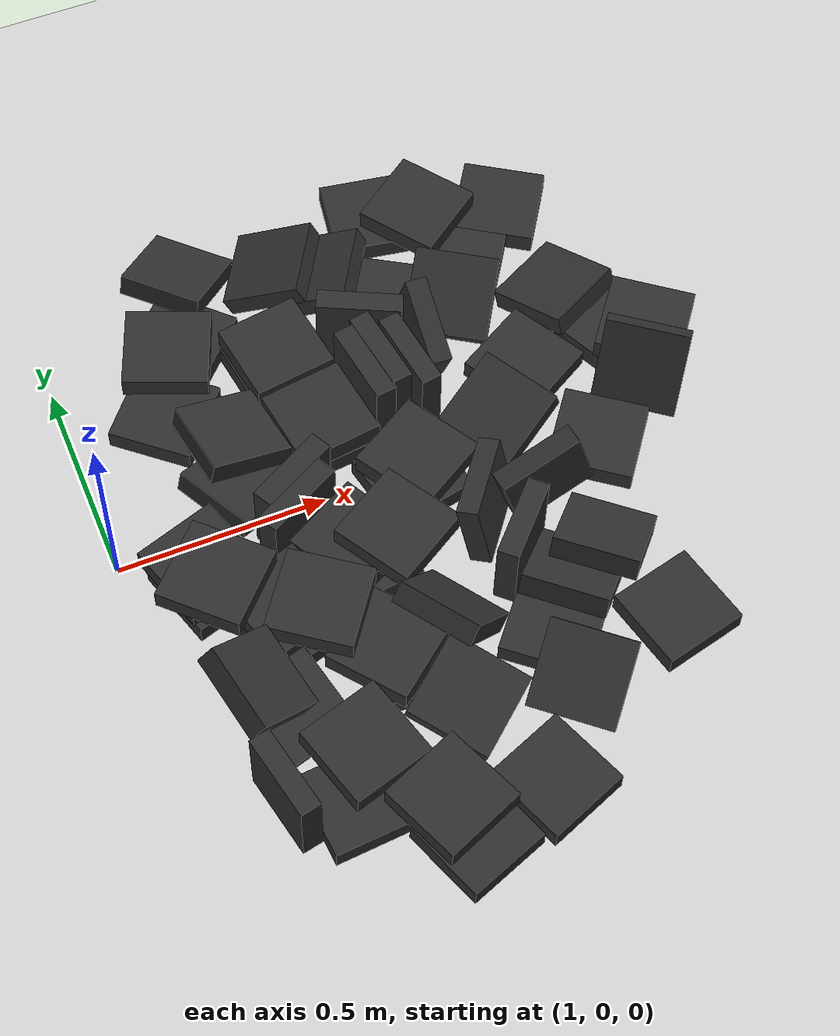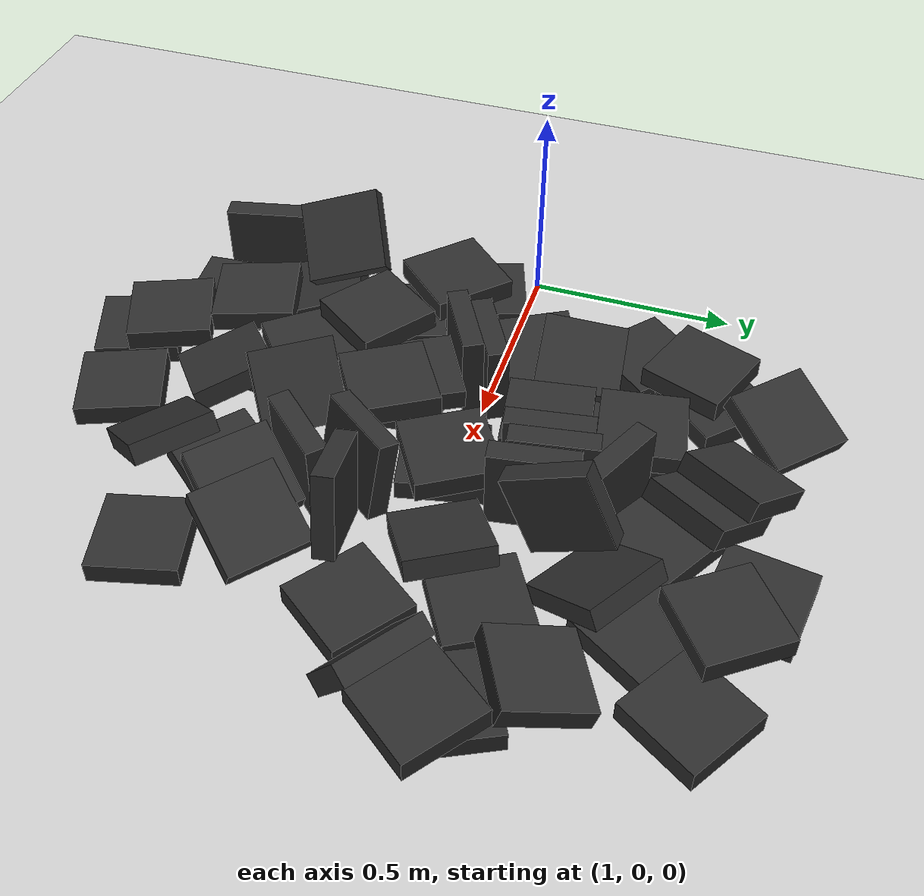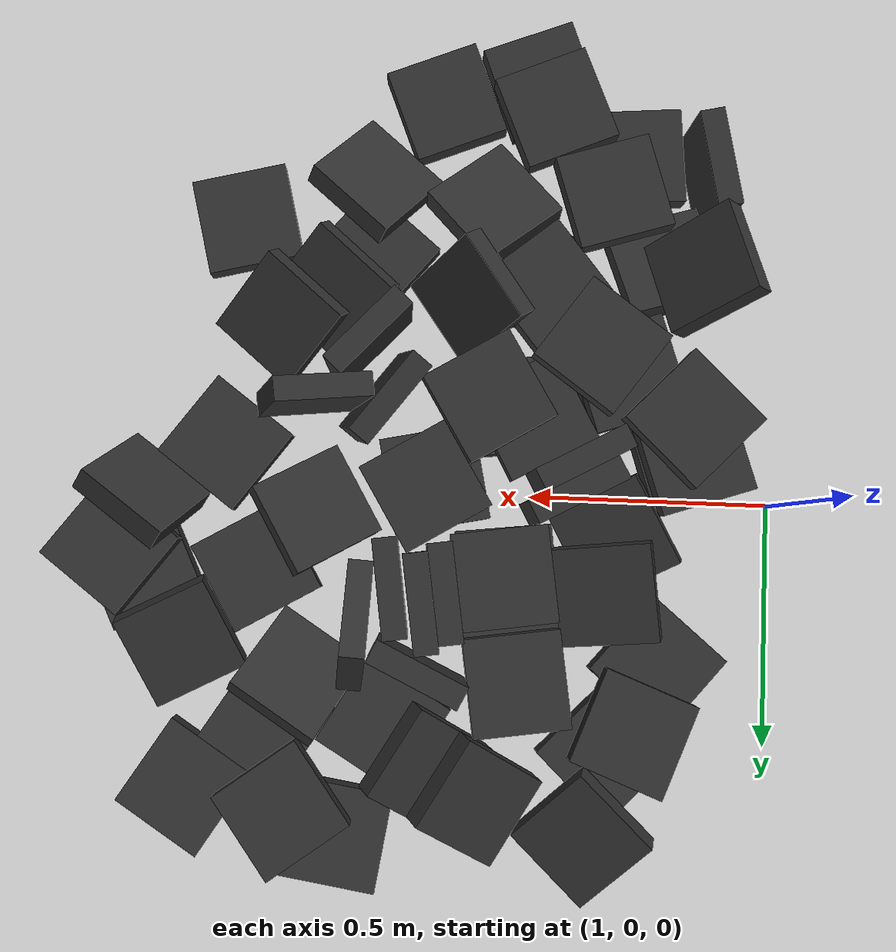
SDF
<sdf version="1.6">
 <world name="default">
  <model name="ground_plane">
   <static>1</static>
   <link name="link">
    <collision name="collision">
     <geometry><plane><normal>0 0 1</normal><size>100 100</size></plane></geometry>
     <surface><friction><ode><mu>100</mu><mu2>50</mu2></ode></friction></surface>
    </collision>
    <visual name="visual">
     <cast_shadows>0</cast_shadows>
     <geometry><plane><normal>0 0 1</normal><size>100 100</size></plane></geometry>
     <material>
      <script><uri>file://media/materials/scripts/gazebo.material</uri><name>Gazebo/Grey</name></script>
     </material>
    </visual>
   </link>
  </model>
  <model name="gareki5">
   <static>1</static>
   <link name="BOX">
    <inertial>
     <mass>10</mass>
     <inertia><ixx>0.001</ixx><ixy>0</ixy><ixz>0</ixz><iyy>0.001</iyy><iyz>0</iyz><izz>0.001</izz></inertia>
    </inertial>
    <collision name="BOX_collision"><geometry><box><size>0.2 0.2 0.05</size></box></geometry></collision>
    <visual name="BOX_visual">
     <geometry><box><size>0.2 0.2 0.05</size></box></geometry>
     <material>
      <ambient>0.175 0.175 0.175 1.0</ambient>
      <diffuse>0.175 0.175 0.175 1.0</diffuse>
      <specular>0.175 0.175 0.175 1.0 1.5</specular>
     </material>
    </visual>
   </link>
   <pose>1.31628 -0.279888 0.024841 0.00025 -0.00043 0.307196</pose>
  </model>
  <model name="gareki7">
   <static>1</static>
   <link name="BOX">
    <inertial>
     <mass>10</mass>
     <inertia><ixx>0.001</ixx><ixy>0</ixy><ixz>0</ixz><iyy>0.001</iyy><iyz>0</iyz><izz>0.001</izz></inertia>
    </inertial>
    <collision name="BOX_collision"><geometry><box><size>0.2 0.2 0.05</size></box></geometry></collision>
    <visual name="BOX_visual">
     <geometry><box><size>0.2 0.2 0.05</size></box></geometry>
     <material>
      <ambient>0.175 0.175 0.175 1.0</ambient>
      <diffuse>0.175 0.175 0.175 1.0</diffuse>
      <specular>0.175 0.175 0.175 1.0 1.5</specular>
     </material>
    </visual>
   </link>
   <pose>2.30266 0.175549 0.024939 0.003629 0.000413 0.447835</pose>
  </model>
  <model name="gareki8">
   <static>1</static>
   <link name="BOX">
    <inertial>
     <mass>10</mass>
     <inertia><ixx>0.001</ixx><ixy>0</ixy><ixz>0</ixz><iyy>0.001</iyy><iyz>0</iyz><izz>0.001</izz></inertia>
    </inertial>
    <collision name="BOX_collision"><geometry><box><size>0.2 0.2 0.05</size></box></geometry></collision>
    <visual name="BOX_visual">
     <geometry><box><size>0.2 0.2 0.05</size></box></geometry>
     <material>
      <ambient>0.175 0.175 0.175 1.0</ambient>
      <diffuse>0.175 0.175 0.175 1.0</diffuse>
      <specular>0.175 0.175 0.175 1.0 1.5</specular>
     </material>
    </visual>
   </link>
   <pose>1.51946 -0.190727 0.024965 0.000835 9.1e-05 0.103807</pose>
  </model>
  <model name="gareki10">
   <static>1</static>
   <link name="BOX">
    <inertial>
     <mass>10</mass>
     <inertia><ixx>0.001</ixx><ixy>0</ixy><ixz>0</ixz><iyy>0.001</iyy><iyz>0</iyz><izz>0.001</izz></inertia>
    </inertial>
    <collision name="BOX_collision"><geometry><box><size>0.2 0.2 0.05</size></box></geometry></collision>
    <visual name="BOX_visual">
     <geometry><box><size>0.2 0.2 0.05</size></box></geometry>
     <material>
      <ambient>0.175 0.175 0.175 1.0</ambient>
      <diffuse>0.175 0.175 0.175 1.0</diffuse>
      <specular>0.175 0.175 0.175 1.0 1.5</specular>
     </material>
    </visual>
   </link>
   <pose>1.51154 -0.460507 0.02488 -0.000364 0.000735 -0.093022</pose>
  </model>
  <model name="gareki13">
   <static>1</static>
   <link name="BOX">
    <inertial>
     <mass>10</mass>
     <inertia><ixx>0.001</ixx><ixy>0</ixy><ixz>0</ixz><iyy>0.001</iyy><iyz>0</iyz><izz>0.001</izz></inertia>
    </inertial>
    <collision name="BOX_collision"><geometry><box><size>0.2 0.2 0.05</size></box></geometry></collision>
    <visual name="BOX_visual">
     <geometry><box><size>0.2 0.2 0.05</size></box></geometry>
     <material>
      <ambient>0.175 0.175 0.175 1.0</ambient>
      <diffuse>0.175 0.175 0.175 1.0</diffuse>
      <specular>0.175 0.175 0.175 1.0 1.5</specular>
     </material>
    </visual>
   </link>
   <pose>1.54433 0.165861 0.024951 0.000333 -0.000259 -1.45331</pose>
  </model>
  <model name="gareki16">
   <static>1</static>
   <link name="BOX">
    <inertial>
     <mass>10</mass>
     <inertia><ixx>0.001</ixx><ixy>0</ixy><ixz>0</ixz><iyy>0.001</iyy><iyz>0</iyz><izz>0.001</izz></inertia>
    </inertial>
    <collision name="BOX_collision"><geometry><box><size>0.2 0.2 0.05</size></box></geometry></collision>
    <visual name="BOX_visual">
     <geometry><box><size>0.2 0.2 0.05</size></box></geometry>
     <material>
      <ambient>0.175 0.175 0.175 1.0</ambient>
      <diffuse>0.175 0.175 0.175 1.0</diffuse>
      <specular>0.175 0.175 0.175 1.0 1.5</specular>
     </material>
    </visual>
   </link>
   <pose>1.84904 -0.501389 0.024959 0.000278 -2.6e-05 -0.69052</pose>
  </model>
  <model name="gareki9">
   <static>1</static>
   <link name="BOX">
    <inertial>
     <mass>10</mass>
     <inertia><ixx>0.001</ixx><ixy>0</ixy><ixz>0</ixz><iyy>0.001</iyy><iyz>0</iyz><izz>0.001</izz></inertia>
    </inertial>
    <collision name="BOX_collision"><geometry><box><size>0.2 0.2 0.05</size></box></geometry></collision>
    <visual name="BOX_visual">
     <geometry><box><size>0.2 0.2 0.05</size></box></geometry>
     <material>
      <ambient>0.175 0.175 0.175 1.0</ambient>
      <diffuse>0.175 0.175 0.175 1.0</diffuse>
      <specular>0.175 0.175 0.175 1.0 1.5</specular>
     </material>
    </visual>
   </link>
   <pose>1.78897 0.477938 0.024999 -0.000143 -0.000227 1.03353</pose>
  </model>
  <model name="gareki11">
   <static>1</static>
   <link name="BOX">
    <inertial>
     <mass>10</mass>
     <inertia><ixx>0.001</ixx><ixy>0</ixy><ixz>0</ixz><iyy>0.001</iyy><iyz>0</iyz><izz>0.001</izz></inertia>
    </inertial>
    <collision name="BOX_collision"><geometry><box><size>0.2 0.2 0.05</size></box></geometry></collision>
    <visual name="BOX_visual">
     <geometry><box><size>0.2 0.2 0.05</size></box></geometry>
     <material>
      <ambient>0.175 0.175 0.175 1.0</ambient>
      <diffuse>0.175 0.175 0.175 1.0</diffuse>
      <specular>0.175 0.175 0.175 1.0 1.5</specular>
     </material>
    </visual>
   </link>
   <pose>1.22892 0.336084 0.02473 4.4e-05 -0.002733 0.872295</pose>
  </model>
  <model name="gareki21">
   <static>1</static>
   <link name="BOX">
    <inertial>
     <mass>10</mass>
     <inertia><ixx>0.001</ixx><ixy>0</ixy><ixz>0</ixz><iyy>0.001</iyy><iyz>0</iyz><izz>0.001</izz></inertia>
    </inertial>
    <collision name="BOX_collision"><geometry><box><size>0.2 0.2 0.05</size></box></geometry></collision>
    <visual name="BOX_visual">
     <geometry><box><size>0.2 0.2 0.05</size></box></geometry>
     <material>
      <ambient>0.175 0.175 0.175 1.0</ambient>
      <diffuse>0.175 0.175 0.175 1.0</diffuse>
      <specular>0.175 0.175 0.175 1.0 1.5</specular>
     </material>
    </visual>
   </link>
   <pose>1.93168 -0.414184 0.067992 -0.466734 -0.006939 -0.706662</pose>
  </model>
  <model name="gareki23">
   <static>1</static>
   <link name="BOX">
    <inertial>
     <mass>10</mass>
     <inertia><ixx>0.001</ixx><ixy>0</ixy><ixz>0</ixz><iyy>0.001</iyy><iyz>0</iyz><izz>0.001</izz></inertia>
    </inertial>
    <collision name="BOX_collision"><geometry><box><size>0.2 0.2 0.05</size></box></geometry></collision>
    <visual name="BOX_visual">
     <geometry><box><size>0.2 0.2 0.05</size></box></geometry>
     <material>
      <ambient>0.175 0.175 0.175 1.0</ambient>
      <diffuse>0.175 0.175 0.175 1.0</diffuse>
      <specular>0.175 0.175 0.175 1.0 1.5</specular>
     </material>
    </visual>
   </link>
   <pose>1.29793 -0.730407 0.02499 0.000827 0.000759 0.078773</pose>
  </model>
  <model name="gareki29">
   <static>1</static>
   <link name="BOX">
    <inertial>
     <mass>10</mass>
     <inertia><ixx>0.001</ixx><ixy>0</ixy><ixz>0</ixz><iyy>0.001</iyy><iyz>0</iyz><izz>0.001</izz></inertia>
    </inertial>
    <collision name="BOX_collision"><geometry><box><size>0.2 0.2 0.05</size></box></geometry></collision>
    <visual name="BOX_visual">
     <geometry><box><size>0.2 0.2 0.05</size></box></geometry>
     <material>
      <ambient>0.175 0.175 0.175 1.0</ambient>
      <diffuse>0.175 0.175 0.175 1.0</diffuse>
      <specular>0.175 0.175 0.175 1.0 1.5</specular>
     </material>
    </visual>
   </link>
   <pose>2.03289 -0.351604 0.067237 -0.465417 -0.000509 -0.69697</pose>
  </model>
  <model name="gareki20">
   <static>1</static>
   <link name="BOX">
    <inertial>
     <mass>10</mass>
     <inertia><ixx>0.001</ixx><ixy>0</ixy><ixz>0</ixz><iyy>0.001</iyy><iyz>0</iyz><izz>0.001</izz></inertia>
    </inertial>
    <collision name="BOX_collision"><geometry><box><size>0.2 0.2 0.05</size></box></geometry></collision>
    <visual name="BOX_visual">
     <geometry><box><size>0.2 0.2 0.05</size></box></geometry>
     <material>
      <ambient>0.175 0.175 0.175 1.0</ambient>
      <diffuse>0.175 0.175 0.175 1.0</diffuse>
      <specular>0.175 0.175 0.175 1.0 1.5</specular>
     </material>
    </visual>
   </link>
   <pose>1.3323 0.519286 0.024993 3.5e-05 -1.1e-05 -0.767742</pose>
  </model>
  <model name="gareki31">
   <static>1</static>
   <link name="BOX">
    <inertial>
     <mass>10</mass>
     <inertia><ixx>0.001</ixx><ixy>0</ixy><ixz>0</ixz><iyy>0.001</iyy><iyz>0</iyz><izz>0.001</izz></inertia>
    </inertial>
    <collision name="BOX_collision"><geometry><box><size>0.2 0.2 0.05</size></box></geometry></collision>
    <visual name="BOX_visual">
     <geometry><box><size>0.2 0.2 0.05</size></box></geometry>
     <material>
      <ambient>0.175 0.175 0.175 1.0</ambient>
      <diffuse>0.175 0.175 0.175 1.0</diffuse>
      <specular>0.175 0.175 0.175 1.0 1.5</specular>
     </material>
    </visual>
   </link>
   <pose>1.51936 0.366992 0.024972 -0.000237 -5e-06 -1.4264</pose>
  </model>
  <model name="gareki33">
   <static>1</static>
   <link name="BOX">
    <inertial>
     <mass>10</mass>
     <inertia><ixx>0.001</ixx><ixy>0</ixy><ixz>0</ixz><iyy>0.001</iyy><iyz>0</iyz><izz>0.001</izz></inertia>
    </inertial>
    <collision name="BOX_collision"><geometry><box><size>0.2 0.2 0.05</size></box></geometry></collision>
    <visual name="BOX_visual">
     <geometry><box><size>0.2 0.2 0.05</size></box></geometry>
     <material>
      <ambient>0.175 0.175 0.175 1.0</ambient>
      <diffuse>0.175 0.175 0.175 1.0</diffuse>
      <specular>0.175 0.175 0.175 1.0 1.5</specular>
     </material>
    </visual>
   </link>
   <pose>1.50092 -0.892813 0.024793 -0.00125 0.001185 0.365437</pose>
  </model>
  <model name="gareki37">
   <static>1</static>
   <link name="BOX">
    <inertial>
     <mass>10</mass>
     <inertia><ixx>0.001</ixx><ixy>0</ixy><ixz>0</ixz><iyy>0.001</iyy><iyz>0</iyz><izz>0.001</izz></inertia>
    </inertial>
    <collision name="BOX_collision"><geometry><box><size>0.2 0.2 0.05</size></box></geometry></collision>
    <visual name="BOX_visual">
     <geometry><box><size>0.2 0.2 0.05</size></box></geometry>
     <material>
      <ambient>0.175 0.175 0.175 1.0</ambient>
      <diffuse>0.175 0.175 0.175 1.0</diffuse>
      <specular>0.175 0.175 0.175 1.0 1.5</specular>
     </material>
    </visual>
   </link>
   <pose>1.18254 -0.112425 0.024887 -0.000933 4.2e-05 0.308765</pose>
  </model>
  <model name="gareki32">
   <static>1</static>
   <link name="BOX">
    <inertial>
     <mass>10</mass>
     <inertia><ixx>0.001</ixx><ixy>0</ixy><ixz>0</ixz><iyy>0.001</iyy><iyz>0</iyz><izz>0.001</izz></inertia>
    </inertial>
    <collision name="BOX_collision"><geometry><box><size>0.2 0.2 0.05</size></box></geometry></collision>
    <visual name="BOX_visual">
     <geometry><box><size>0.2 0.2 0.05</size></box></geometry>
     <material>
      <ambient>0.175 0.175 0.175 1.0</ambient>
      <diffuse>0.175 0.175 0.175 1.0</diffuse>
      <specular>0.175 0.175 0.175 1.0 1.5</specular>
     </material>
    </visual>
   </link>
   <pose>1.55369 0.169864 0.074943 3.4e-05 -7.5e-05 -1.42645</pose>
  </model>
  <model name="gareki19">
   <static>1</static>
   <link name="BOX">
    <inertial>
     <mass>10</mass>
     <inertia><ixx>0.001</ixx><ixy>0</ixy><ixz>0</ixz><iyy>0.001</iyy><iyz>0</iyz><izz>0.001</izz></inertia>
    </inertial>
    <collision name="BOX_collision"><geometry><box><size>0.2 0.2 0.05</size></box></geometry></collision>
    <visual name="BOX_visual">
     <geometry><box><size>0.2 0.2 0.05</size></box></geometry>
     <material>
      <ambient>0.175 0.175 0.175 1.0</ambient>
      <diffuse>0.175 0.175 0.175 1.0</diffuse>
      <specular>0.175 0.175 0.175 1.0 1.5</specular>
     </material>
    </visual>
   </link>
   <pose>1.15485 -0.685166 0.100098 1.56819 0.000911 -1.36102</pose>
  </model>
  <model name="gareki34">
   <static>1</static>
   <link name="BOX">
    <inertial>
     <mass>10</mass>
     <inertia><ixx>0.001</ixx><ixy>0</ixy><ixz>0</ixz><iyy>0.001</iyy><iyz>0</iyz><izz>0.001</izz></inertia>
    </inertial>
    <collision name="BOX_collision"><geometry><box><size>0.2 0.2 0.05</size></box></geometry></collision>
    <visual name="BOX_visual">
     <geometry><box><size>0.2 0.2 0.05</size></box></geometry>
     <material>
      <ambient>0.175 0.175 0.175 1.0</ambient>
      <diffuse>0.175 0.175 0.175 1.0</diffuse>
      <specular>0.175 0.175 0.175 1.0 1.5</specular>
     </material>
    </visual>
   </link>
   <pose>1.70189 -0.029203 0.024994 -0.001191 0.001314 0.20836</pose>
  </model>
  <model name="gareki39">
   <static>1</static>
   <link name="BOX">
    <inertial>
     <mass>10</mass>
     <inertia><ixx>0.001</ixx><ixy>0</ixy><ixz>0</ixz><iyy>0.001</iyy><iyz>0</iyz><izz>0.001</izz></inertia>
    </inertial>
    <collision name="BOX_collision"><geometry><box><size>0.2 0.2 0.05</size></box></geometry></collision>
    <visual name="BOX_visual">
     <geometry><box><size>0.2 0.2 0.05</size></box></geometry>
     <material>
      <ambient>0.175 0.175 0.175 1.0</ambient>
      <diffuse>0.175 0.175 0.175 1.0</diffuse>
      <specular>0.175 0.175 0.175 1.0 1.5</specular>
     </material>
    </visual>
   </link>
   <pose>1.87757 0.702094 0.024663 0.003381 -1.9e-05 -0.154785</pose>
  </model>
  <model name="gareki41">
   <static>1</static>
   <link name="BOX">
    <inertial>
     <mass>10</mass>
     <inertia><ixx>0.001</ixx><ixy>0</ixy><ixz>0</ixz><iyy>0.001</iyy><iyz>0</iyz><izz>0.001</izz></inertia>
    </inertial>
    <collision name="BOX_collision"><geometry><box><size>0.2 0.2 0.05</size></box></geometry></collision>
    <visual name="BOX_visual">
     <geometry><box><size>0.2 0.2 0.05</size></box></geometry>
     <material>
      <ambient>0.175 0.175 0.175 1.0</ambient>
      <diffuse>0.175 0.175 0.175 1.0</diffuse>
      <specular>0.175 0.175 0.175 1.0 1.5</specular>
     </material>
    </visual>
   </link>
   <pose>2.19023 0.618485 0.024997 -2.4e-05 -1.2e-05 1.00492</pose>
  </model>
  <model name="gareki43">
   <static>1</static>
   <link name="BOX">
    <inertial>
     <mass>10</mass>
     <inertia><ixx>0.001</ixx><ixy>0</ixy><ixz>0</ixz><iyy>0.001</iyy><iyz>0</iyz><izz>0.001</izz></inertia>
    </inertial>
    <collision name="BOX_collision"><geometry><box><size>0.2 0.2 0.05</size></box></geometry></collision>
    <visual name="BOX_visual">
     <geometry><box><size>0.2 0.2 0.05</size></box></geometry>
     <material>
      <ambient>0.175 0.175 0.175 1.0</ambient>
      <diffuse>0.175 0.175 0.175 1.0</diffuse>
      <specular>0.175 0.175 0.175 1.0 1.5</specular>
     </material>
    </visual>
   </link>
   <pose>1.32569 0.080378 0.053458 2.84528 0.005474 -1.07289</pose>
  </model>
  <model name="gareki48">
   <static>1</static>
   <link name="BOX">
    <inertial>
     <mass>10</mass>
     <inertia><ixx>0.001</ixx><ixy>0</ixy><ixz>0</ixz><iyy>0.001</iyy><iyz>0</iyz><izz>0.001</izz></inertia>
    </inertial>
    <collision name="BOX_collision"><geometry><box><size>0.2 0.2 0.05</size></box></geometry></collision>
    <visual name="BOX_visual">
     <geometry><box><size>0.2 0.2 0.05</size></box></geometry>
     <material>
      <ambient>0.175 0.175 0.175 1.0</ambient>
      <diffuse>0.175 0.175 0.175 1.0</diffuse>
      <specular>0.175 0.175 0.175 1.0 1.5</specular>
     </material>
    </visual>
   </link>
   <pose>1.70489 -0.836145 0.024947 0.000112 0.000276 0.380636</pose>
  </model>
  <model name="gareki49">
   <static>1</static>
   <link name="BOX">
    <inertial>
     <mass>10</mass>
     <inertia><ixx>0.001</ixx><ixy>0</ixy><ixz>0</ixz><iyy>0.001</iyy><iyz>0</iyz><izz>0.001</izz></inertia>
    </inertial>
    <collision name="BOX_collision"><geometry><box><size>0.2 0.2 0.05</size></box></geometry></collision>
    <visual name="BOX_visual">
     <geometry><box><size>0.2 0.2 0.05</size></box></geometry>
     <material>
      <ambient>0.175 0.175 0.175 1.0</ambient>
      <diffuse>0.175 0.175 0.175 1.0</diffuse>
      <specular>0.175 0.175 0.175 1.0 1.5</specular>
     </material>
    </visual>
   </link>
   <pose>1.42078 -0.010259 0.100002 -1.57085 0.000117 -2.64271</pose>
  </model>
  <model name="gareki40">
   <static>1</static>
   <link name="BOX">
    <inertial>
     <mass>10</mass>
     <inertia><ixx>0.001</ixx><ixy>0</ixy><ixz>0</ixz><iyy>0.001</iyy><iyz>0</iyz><izz>0.001</izz></inertia>
    </inertial>
    <collision name="BOX_collision"><geometry><box><size>0.2 0.2 0.05</size></box></geometry></collision>
    <visual name="BOX_visual">
     <geometry><box><size>0.2 0.2 0.05</size></box></geometry>
     <material>
      <ambient>0.175 0.175 0.175 1.0</ambient>
      <diffuse>0.175 0.175 0.175 1.0</diffuse>
      <specular>0.175 0.175 0.175 1.0 1.5</specular>
     </material>
    </visual>
   </link>
   <pose>1.69483 0.559943 0.066556 -0.457202 -0.000157 1.03537</pose>
  </model>
  <model name="gareki45">
   <static>1</static>
   <link name="BOX">
    <inertial>
     <mass>10</mass>
     <inertia><ixx>0.001</ixx><ixy>0</ixy><ixz>0</ixz><iyy>0.001</iyy><iyz>0</iyz><izz>0.001</izz></inertia>
    </inertial>
    <collision name="BOX_collision"><geometry><box><size>0.2 0.2 0.05</size></box></geometry></collision>
    <visual name="BOX_visual">
     <geometry><box><size>0.2 0.2 0.05</size></box></geometry>
     <material>
      <ambient>0.175 0.175 0.175 1.0</ambient>
      <diffuse>0.175 0.175 0.175 1.0</diffuse>
      <specular>0.175 0.175 0.175 1.0 1.5</specular>
     </material>
    </visual>
   </link>
   <pose>2.11806 -0.565214 0.024998 -1.7e-05 -1.9e-05 -1.32703</pose>
  </model>
  <model name="gareki46">
   <static>1</static>
   <link name="BOX">
    <inertial>
     <mass>10</mass>
     <inertia><ixx>0.001</ixx><ixy>0</ixy><ixz>0</ixz><iyy>0.001</iyy><iyz>0</iyz><izz>0.001</izz></inertia>
    </inertial>
    <collision name="BOX_collision"><geometry><box><size>0.2 0.2 0.05</size></box></geometry></collision>
    <visual name="BOX_visual">
     <geometry><box><size>0.2 0.2 0.05</size></box></geometry>
     <material>
      <ambient>0.175 0.175 0.175 1.0</ambient>
      <diffuse>0.175 0.175 0.175 1.0</diffuse>
      <specular>0.175 0.175 0.175 1.0 1.5</specular>
     </material>
    </visual>
   </link>
   <pose>1.67581 0.201673 0.099999 -1.57064 -0.000526 -1.42165</pose>
  </model>
  <model name="gareki55">
   <static>1</static>
   <link name="BOX">
    <inertial>
     <mass>10</mass>
     <inertia><ixx>0.001</ixx><ixy>0</ixy><ixz>0</ixz><iyy>0.001</iyy><iyz>0</iyz><izz>0.001</izz></inertia>
    </inertial>
    <collision name="BOX_collision"><geometry><box><size>0.2 0.2 0.05</size></box></geometry></collision>
    <visual name="BOX_visual">
     <geometry><box><size>0.2 0.2 0.05</size></box></geometry>
     <material>
      <ambient>0.175 0.175 0.175 1.0</ambient>
      <diffuse>0.175 0.175 0.175 1.0</diffuse>
      <specular>0.175 0.175 0.175 1.0 1.5</specular>
     </material>
    </visual>
   </link>
   <pose>1.48178 -0.434654 0.0749 0.000601 -0.000881 -0.891219</pose>
  </model>
  <model name="gareki52">
   <static>1</static>
   <link name="BOX">
    <inertial>
     <mass>10</mass>
     <inertia><ixx>0.001</ixx><ixy>0</ixy><ixz>0</ixz><iyy>0.001</iyy><iyz>0</iyz><izz>0.001</izz></inertia>
    </inertial>
    <collision name="BOX_collision"><geometry><box><size>0.2 0.2 0.05</size></box></geometry></collision>
    <visual name="BOX_visual">
     <geometry><box><size>0.2 0.2 0.05</size></box></geometry>
     <material>
      <ambient>0.175 0.175 0.175 1.0</ambient>
      <diffuse>0.175 0.175 0.175 1.0</diffuse>
      <specular>0.175 0.175 0.175 1.0 1.5</specular>
     </material>
    </visual>
   </link>
   <pose>2.06493 0.166613 0.024993 3.14135 -2e-06 -2.61551</pose>
  </model>
  <model name="gareki62">
   <static>1</static>
   <link name="BOX">
    <inertial>
     <mass>10</mass>
     <inertia><ixx>0.001</ixx><ixy>0</ixy><ixz>0</ixz><iyy>0.001</iyy><iyz>0</iyz><izz>0.001</izz></inertia>
    </inertial>
    <collision name="BOX_collision"><geometry><box><size>0.2 0.2 0.05</size></box></geometry></collision>
    <visual name="BOX_visual">
     <geometry><box><size>0.2 0.2 0.05</size></box></geometry>
     <material>
      <ambient>0.175 0.175 0.175 1.0</ambient>
      <diffuse>0.175 0.175 0.175 1.0</diffuse>
      <specular>0.175 0.175 0.175 1.0 1.5</specular>
     </material>
    </visual>
   </link>
   <pose>1.31073 -0.258972 0.074874 -0.000515 1.4e-05 0.325858</pose>
  </model>
  <model name="gareki56">
   <static>1</static>
   <link name="BOX">
    <inertial>
     <mass>10</mass>
     <inertia><ixx>0.001</ixx><ixy>0</ixy><ixz>0</ixz><iyy>0.001</iyy><iyz>0</iyz><izz>0.001</izz></inertia>
    </inertial>
    <collision name="BOX_collision"><geometry><box><size>0.2 0.2 0.05</size></box></geometry></collision>
    <visual name="BOX_visual">
     <geometry><box><size>0.2 0.2 0.05</size></box></geometry>
     <material>
      <ambient>0.175 0.175 0.175 1.0</ambient>
      <diffuse>0.175 0.175 0.175 1.0</diffuse>
      <specular>0.175 0.175 0.175 1.0 1.5</specular>
     </material>
    </visual>
   </link>
   <pose>1.40881 -0.073626 0.099984 1.57178 0.000176 0.499292</pose>
  </model>
  <model name="gareki65">
   <static>1</static>
   <link name="BOX">
    <inertial>
     <mass>10</mass>
     <inertia><ixx>0.001</ixx><ixy>0</ixy><ixz>0</ixz><iyy>0.001</iyy><iyz>0</iyz><izz>0.001</izz></inertia>
    </inertial>
    <collision name="BOX_collision"><geometry><box><size>0.2 0.2 0.05</size></box></geometry></collision>
    <visual name="BOX_visual">
     <geometry><box><size>0.2 0.2 0.05</size></box></geometry>
     <material>
      <ambient>0.175 0.175 0.175 1.0</ambient>
      <diffuse>0.175 0.175 0.175 1.0</diffuse>
      <specular>0.175 0.175 0.175 1.0 1.5</specular>
     </material>
    </visual>
   </link>
   <pose>2.02877 0.484095 0.024978 0.000178 -0.000438 -0.565911</pose>
  </model>
  <model name="gareki66">
   <static>1</static>
   <link name="BOX">
    <inertial>
     <mass>10</mass>
     <inertia><ixx>0.001</ixx><ixy>0</ixy><ixz>0</ixz><iyy>0.001</iyy><iyz>0</iyz><izz>0.001</izz></inertia>
    </inertial>
    <collision name="BOX_collision"><geometry><box><size>0.2 0.2 0.05</size></box></geometry></collision>
    <visual name="BOX_visual">
     <geometry><box><size>0.2 0.2 0.05</size></box></geometry>
     <material>
      <ambient>0.175 0.175 0.175 1.0</ambient>
      <diffuse>0.175 0.175 0.175 1.0</diffuse>
      <specular>0.175 0.175 0.175 1.0 1.5</specular>
     </material>
    </visual>
   </link>
   <pose>2.21013 0.323113 0.053663 -0.294003 0.007605 0.480774</pose>
  </model>
  <model name="gareki73">
   <static>1</static>
   <link name="BOX">
    <inertial>
     <mass>10</mass>
     <inertia><ixx>0.001</ixx><ixy>0</ixy><ixz>0</ixz><iyy>0.001</iyy><iyz>0</iyz><izz>0.001</izz></inertia>
    </inertial>
    <collision name="BOX_collision"><geometry><box><size>0.2 0.2 0.05</size></box></geometry></collision>
    <visual name="BOX_visual">
     <geometry><box><size>0.2 0.2 0.05</size></box></geometry>
     <material>
      <ambient>0.175 0.175 0.175 1.0</ambient>
      <diffuse>0.175 0.175 0.175 1.0</diffuse>
      <specular>0.175 0.175 0.175 1.0 1.5</specular>
     </material>
    </visual>
   </link>
   <pose>1.84794 -0.310919 0.100033 0.004868 -1.56821 -0.755927</pose>
  </model>
  <model name="gareki47">
   <static>1</static>
   <link name="BOX">
    <inertial>
     <mass>10</mass>
     <inertia><ixx>0.001</ixx><ixy>0</ixy><ixz>0</ixz><iyy>0.001</iyy><iyz>0</iyz><izz>0.001</izz></inertia>
    </inertial>
    <collision name="BOX_collision"><geometry><box><size>0.2 0.2 0.05</size></box></geometry></collision>
    <visual name="BOX_visual">
     <geometry><box><size>0.2 0.2 0.05</size></box></geometry>
     <material>
      <ambient>0.175 0.175 0.175 1.0</ambient>
      <diffuse>0.175 0.175 0.175 1.0</diffuse>
      <specular>0.175 0.175 0.175 1.0 1.5</specular>
     </material>
    </visual>
   </link>
   <pose>1.17167 -0.094521 0.074866 0.00211 0.00024 0.322857</pose>
  </model>
  <model name="gareki71">
   <static>1</static>
   <link name="BOX">
    <inertial>
     <mass>10</mass>
     <inertia><ixx>0.001</ixx><ixy>0</ixy><ixz>0</ixz><iyy>0.001</iyy><iyz>0</iyz><izz>0.001</izz></inertia>
    </inertial>
    <collision name="BOX_collision"><geometry><box><size>0.2 0.2 0.05</size></box></geometry></collision>
    <visual name="BOX_visual">
     <geometry><box><size>0.2 0.2 0.05</size></box></geometry>
     <material>
      <ambient>0.175 0.175 0.175 1.0</ambient>
      <diffuse>0.175 0.175 0.175 1.0</diffuse>
      <specular>0.175 0.175 0.175 1.0 1.5</specular>
     </material>
    </visual>
   </link>
   <pose>1.50516 -0.163873 0.074779 -0.001045 0.002859 0.499856</pose>
  </model>
  <model name="gareki64">
   <static>1</static>
   <link name="BOX">
    <inertial>
     <mass>10</mass>
     <inertia><ixx>0.001</ixx><ixy>0</ixy><ixz>0</ixz><iyy>0.001</iyy><iyz>0</iyz><izz>0.001</izz></inertia>
    </inertial>
    <collision name="BOX_collision"><geometry><box><size>0.2 0.2 0.05</size></box></geometry></collision>
    <visual name="BOX_visual">
     <geometry><box><size>0.2 0.2 0.05</size></box></geometry>
     <material>
      <ambient>0.175 0.175 0.175 1.0</ambient>
      <diffuse>0.175 0.175 0.175 1.0</diffuse>
      <specular>0.175 0.175 0.175 1.0 1.5</specular>
     </material>
    </visual>
   </link>
   <pose>1.59704 0.616508 0.066681 -0.457832 0.001294 1.03763</pose>
  </model>
  <model name="gareki77">
   <static>1</static>
   <link name="BOX">
    <inertial>
     <mass>10</mass>
     <inertia><ixx>0.001</ixx><ixy>0</ixy><ixz>0</ixz><iyy>0.001</iyy><iyz>0</iyz><izz>0.001</izz></inertia>
    </inertial>
    <collision name="BOX_collision"><geometry><box><size>0.2 0.2 0.05</size></box></geometry></collision>
    <visual name="BOX_visual">
     <geometry><box><size>0.2 0.2 0.05</size></box></geometry>
     <material>
      <ambient>0.175 0.175 0.175 1.0</ambient>
      <diffuse>0.175 0.175 0.175 1.0</diffuse>
      <specular>0.175 0.175 0.175 1.0 1.5</specular>
     </material>
    </visual>
   </link>
   <pose>1.7233 0.223408 0.100005 -0.28222 1.57039 -0.130316</pose>
  </model>
  <model name="gareki74">
   <static>1</static>
   <link name="BOX">
    <inertial>
     <mass>10</mass>
     <inertia><ixx>0.001</ixx><ixy>0</ixy><ixz>0</ixz><iyy>0.001</iyy><iyz>0</iyz><izz>0.001</izz></inertia>
    </inertial>
    <collision name="BOX_collision"><geometry><box><size>0.2 0.2 0.05</size></box></geometry></collision>
    <visual name="BOX_visual">
     <geometry><box><size>0.2 0.2 0.05</size></box></geometry>
     <material>
      <ambient>0.175 0.175 0.175 1.0</ambient>
      <diffuse>0.175 0.175 0.175 1.0</diffuse>
      <specular>0.175 0.175 0.175 1.0 1.5</specular>
     </material>
    </visual>
   </link>
   <pose>1.84893 -0.650056 0.070315 0.006227 -0.499643 0.870897</pose>
  </model>
  <model name="gareki78">
   <static>1</static>
   <link name="BOX">
    <inertial>
     <mass>10</mass>
     <inertia><ixx>0.001</ixx><ixy>0</ixy><ixz>0</ixz><iyy>0.001</iyy><iyz>0</iyz><izz>0.001</izz></inertia>
    </inertial>
    <collision name="BOX_collision"><geometry><box><size>0.2 0.2 0.05</size></box></geometry></collision>
    <visual name="BOX_visual">
     <geometry><box><size>0.2 0.2 0.05</size></box></geometry>
     <material>
      <ambient>0.175 0.175 0.175 1.0</ambient>
      <diffuse>0.175 0.175 0.175 1.0</diffuse>
      <specular>0.175 0.175 0.175 1.0 1.5</specular>
     </material>
    </visual>
   </link>
   <pose>2.35817 0.133751 0.074536 0.004887 -0.001808 0.924885</pose>
  </model>
  <model name="gareki83">
   <static>1</static>
   <link name="BOX">
    <inertial>
     <mass>10</mass>
     <inertia><ixx>0.001</ixx><ixy>0</ixy><ixz>0</ixz><iyy>0.001</iyy><iyz>0</iyz><izz>0.001</izz></inertia>
    </inertial>
    <collision name="BOX_collision"><geometry><box><size>0.2 0.2 0.05</size></box></geometry></collision>
    <visual name="BOX_visual">
     <geometry><box><size>0.2 0.2 0.05</size></box></geometry>
     <material>
      <ambient>0.175 0.175 0.175 1.0</ambient>
      <diffuse>0.175 0.175 0.175 1.0</diffuse>
      <specular>0.175 0.175 0.175 1.0 1.5</specular>
     </material>
    </visual>
   </link>
   <pose>1.23688 -0.496661 0.051723 0.280253 -0.001171 0.292273</pose>
  </model>
  <model name="gareki84">
   <static>1</static>
   <link name="BOX">
    <inertial>
     <mass>10</mass>
     <inertia><ixx>0.001</ixx><ixy>0</ixy><ixz>0</ixz><iyy>0.001</iyy><iyz>0</iyz><izz>0.001</izz></inertia>
    </inertial>
    <collision name="BOX_collision"><geometry><box><size>0.2 0.2 0.05</size></box></geometry></collision>
    <visual name="BOX_visual">
     <geometry><box><size>0.2 0.2 0.05</size></box></geometry>
     <material>
      <ambient>0.175 0.175 0.175 1.0</ambient>
      <diffuse>0.175 0.175 0.175 1.0</diffuse>
      <specular>0.175 0.175 0.175 1.0 1.5</specular>
     </material>
    </visual>
   </link>
   <pose>1.72509 0.360052 0.100001 -1.57062 0.000212 -0.443847</pose>
  </model>
  <model name="gareki85">
   <static>1</static>
   <link name="BOX">
    <inertial>
     <mass>10</mass>
     <inertia><ixx>0.001</ixx><ixy>0</ixy><ixz>0</ixz><iyy>0.001</iyy><iyz>0</iyz><izz>0.001</izz></inertia>
    </inertial>
    <collision name="BOX_collision"><geometry><box><size>0.2 0.2 0.05</size></box></geometry></collision>
    <visual name="BOX_visual">
     <geometry><box><size>0.2 0.2 0.05</size></box></geometry>
     <material>
      <ambient>0.175 0.175 0.175 1.0</ambient>
      <diffuse>0.175 0.175 0.175 1.0</diffuse>
      <specular>0.175 0.175 0.175 1.0 1.5</specular>
     </material>
    </visual>
   </link>
   <pose>1.72109 -0.010598 0.074835 -3.13722 -0.003911 2.11714</pose>
  </model>
  <model name="gareki91">
   <static>1</static>
   <link name="BOX">
    <inertial>
     <mass>10</mass>
     <inertia><ixx>0.001</ixx><ixy>0</ixy><ixz>0</ixz><iyy>0.001</iyy><iyz>0</iyz><izz>0.001</izz></inertia>
    </inertial>
    <collision name="BOX_collision"><geometry><box><size>0.2 0.2 0.05</size></box></geometry></collision>
    <visual name="BOX_visual">
     <geometry><box><size>0.2 0.2 0.05</size></box></geometry>
     <material>
      <ambient>0.175 0.175 0.175 1.0</ambient>
      <diffuse>0.175 0.175 0.175 1.0</diffuse>
      <specular>0.175 0.175 0.175 1.0 1.5</specular>
     </material>
    </visual>
   </link>
   <pose>1.47522 -0.813645 0.074831 -0.000116 -0.000225 0.397172</pose>
  </model>
  <model name="gareki90">
   <static>1</static>
   <link name="BOX">
    <inertial>
     <mass>10</mass>
     <inertia><ixx>0.001</ixx><ixy>0</ixy><ixz>0</ixz><iyy>0.001</iyy><iyz>0</iyz><izz>0.001</izz></inertia>
    </inertial>
    <collision name="BOX_collision"><geometry><box><size>0.2 0.2 0.05</size></box></geometry></collision>
    <visual name="BOX_visual">
     <geometry><box><size>0.2 0.2 0.05</size></box></geometry>
     <material>
      <ambient>0.175 0.175 0.175 1.0</ambient>
      <diffuse>0.175 0.175 0.175 1.0</diffuse>
      <specular>0.175 0.175 0.175 1.0 1.5</specular>
     </material>
    </visual>
   </link>
   <pose>1.34968 -0.637936 0.078623 -0.00684 0.037769 -1.27406</pose>
  </model>
  <model name="gareki95">
   <static>1</static>
   <link name="BOX">
    <inertial>
     <mass>10</mass>
     <inertia><ixx>0.001</ixx><ixy>0</ixy><ixz>0</ixz><iyy>0.001</iyy><iyz>0</iyz><izz>0.001</izz></inertia>
    </inertial>
    <collision name="BOX_collision"><geometry><box><size>0.2 0.2 0.05</size></box></geometry></collision>
    <visual name="BOX_visual">
     <geometry><box><size>0.2 0.2 0.05</size></box></geometry>
     <material>
      <ambient>0.175 0.175 0.175 1.0</ambient>
      <diffuse>0.175 0.175 0.175 1.0</diffuse>
      <specular>0.175 0.175 0.175 1.0 1.5</specular>
     </material>
    </visual>
   </link>
   <pose>1.64133 -0.405318 0.091302 -0.844097 0.000167 -0.952531</pose>
  </model>
  <model name="gareki86">
   <static>1</static>
   <link name="BOX">
    <inertial>
     <mass>10</mass>
     <inertia><ixx>0.001</ixx><ixy>0</ixy><ixz>0</ixz><iyy>0.001</iyy><iyz>0</iyz><izz>0.001</izz></inertia>
    </inertial>
    <collision name="BOX_collision"><geometry><box><size>0.2 0.2 0.05</size></box></geometry></collision>
    <visual name="BOX_visual">
     <geometry><box><size>0.2 0.2 0.05</size></box></geometry>
     <material>
      <ambient>0.175 0.175 0.175 1.0</ambient>
      <diffuse>0.175 0.175 0.175 1.0</diffuse>
      <specular>0.175 0.175 0.175 1.0 1.5</specular>
     </material>
    </visual>
   </link>
   <pose>2.29407 0.017984 0.097961 0.972608 0.013322 -0.62813</pose>
  </model>
  <model name="gareki97">
   <static>1</static>
   <link name="BOX">
    <inertial>
     <mass>10</mass>
     <inertia><ixx>0.001</ixx><ixy>0</ixy><ixz>0</ixz><iyy>0.001</iyy><iyz>0</iyz><izz>0.001</izz></inertia>
    </inertial>
    <collision name="BOX_collision"><geometry><box><size>0.2 0.2 0.05</size></box></geometry></collision>
    <visual name="BOX_visual">
     <geometry><box><size>0.2 0.2 0.05</size></box></geometry>
     <material>
      <ambient>0.175 0.175 0.175 1.0</ambient>
      <diffuse>0.175 0.175 0.175 1.0</diffuse>
      <specular>0.175 0.175 0.175 1.0 1.5</specular>
     </material>
    </visual>
   </link>
   <pose>1.37382 -0.306399 0.124718 0.002312 0.001023 0.947455</pose>
  </model>
  <model name="gareki92">
   <static>1</static>
   <link name="BOX">
    <inertial>
     <mass>10</mass>
     <inertia><ixx>0.001</ixx><ixy>0</ixy><ixz>0</ixz><iyy>0.001</iyy><iyz>0</iyz><izz>0.001</izz></inertia>
    </inertial>
    <collision name="BOX_collision"><geometry><box><size>0.2 0.2 0.05</size></box></geometry></collision>
    <visual name="BOX_visual">
     <geometry><box><size>0.2 0.2 0.05</size></box></geometry>
     <material>
      <ambient>0.175 0.175 0.175 1.0</ambient>
      <diffuse>0.175 0.175 0.175 1.0</diffuse>
      <specular>0.175 0.175 0.175 1.0 1.5</specular>
     </material>
    </visual>
   </link>
   <pose>2.14103 -0.088614 0.024699 -0.000483 0.003178 0.93453</pose>
  </model>
  <model name="gareki100">
   <static>1</static>
   <link name="BOX">
    <inertial>
     <mass>10</mass>
     <inertia><ixx>0.001</ixx><ixy>0</ixy><ixz>0</ixz><iyy>0.001</iyy><iyz>0</iyz><izz>0.001</izz></inertia>
    </inertial>
    <collision name="BOX_collision"><geometry><box><size>0.2 0.2 0.05</size></box></geometry></collision>
    <visual name="BOX_visual">
     <geometry><box><size>0.2 0.2 0.05</size></box></geometry>
     <material>
      <ambient>0.175 0.175 0.175 1.0</ambient>
      <diffuse>0.175 0.175 0.175 1.0</diffuse>
      <specular>0.175 0.175 0.175 1.0 1.5</specular>
     </material>
    </visual>
   </link>
   <pose>1.81273 -0.188809 0.102972 1.37154 -0.000455 0.923555</pose>
  </model>
  <model name="gareki88">
   <static>1</static>
   <link name="BOX">
    <inertial>
     <mass>10</mass>
     <inertia><ixx>0.001</ixx><ixy>0</ixy><ixz>0</ixz><iyy>0.001</iyy><iyz>0</iyz><izz>0.001</izz></inertia>
    </inertial>
    <collision name="BOX_collision"><geometry><box><size>0.2 0.2 0.05</size></box></geometry></collision>
    <visual name="BOX_visual">
     <geometry><box><size>0.2 0.2 0.05</size></box></geometry>
     <material>
      <ambient>0.175 0.175 0.175 1.0</ambient>
      <diffuse>0.175 0.175 0.175 1.0</diffuse>
      <specular>0.175 0.175 0.175 1.0 1.5</specular>
     </material>
    </visual>
   </link>
   <pose>1.96807 0.382069 0.068407 0.480447 -0.001024 -0.565056</pose>
  </model>
  <model name="gareki103">
   <static>1</static>
   <link name="BOX">
    <inertial>
     <mass>10</mass>
     <inertia><ixx>0.001</ixx><ixy>0</ixy><ixz>0</ixz><iyy>0.001</iyy><iyz>0</iyz><izz>0.001</izz></inertia>
    </inertial>
    <collision name="BOX_collision"><geometry><box><size>0.2 0.2 0.05</size></box></geometry></collision>
    <visual name="BOX_visual">
     <geometry><box><size>0.2 0.2 0.05</size></box></geometry>
     <material>
      <ambient>0.175 0.175 0.175 1.0</ambient>
      <diffuse>0.175 0.175 0.175 1.0</diffuse>
      <specular>0.175 0.175 0.175 1.0 1.5</specular>
     </material>
    </visual>
   </link>
   <pose>1.98619 0.648751 0.074769 -0.005459 0.003209 0.631862</pose>
  </model>
  <model name="gareki107">
   <static>1</static>
   <link name="BOX">
    <inertial>
     <mass>10</mass>
     <inertia><ixx>0.001</ixx><ixy>0</ixy><ixz>0</ixz><iyy>0.001</iyy><iyz>0</iyz><izz>0.001</izz></inertia>
    </inertial>
    <collision name="BOX_collision"><geometry><box><size>0.2 0.2 0.05</size></box></geometry></collision>
    <visual name="BOX_visual">
     <geometry><box><size>0.2 0.2 0.05</size></box></geometry>
     <material>
      <ambient>0.175 0.175 0.175 1.0</ambient>
      <diffuse>0.175 0.175 0.175 1.0</diffuse>
      <specular>0.175 0.175 0.175 1.0 1.5</specular>
     </material>
    </visual>
   </link>
   <pose>1.78505 0.196229 0.099992 -1.56979 -0.000809 -1.42755</pose>
  </model>
  <model name="gareki105">
   <static>1</static>
   <link name="BOX">
    <inertial>
     <mass>10</mass>
     <inertia><ixx>0.001</ixx><ixy>0</ixy><ixz>0</ixz><iyy>0.001</iyy><iyz>0</iyz><izz>0.001</izz></inertia>
    </inertial>
    <collision name="BOX_collision"><geometry><box><size>0.2 0.2 0.05</size></box></geometry></collision>
    <visual name="BOX_visual">
     <geometry><box><size>0.2 0.2 0.05</size></box></geometry>
     <material>
      <ambient>0.175 0.175 0.175 1.0</ambient>
      <diffuse>0.175 0.175 0.175 1.0</diffuse>
      <specular>0.175 0.175 0.175 1.0 1.5</specular>
     </material>
    </visual>
   </link>
   <pose>1.59893 -0.194996 0.124232 0.009712 -0.000548 -1.02538</pose>
  </model>
  <model name="gareki113">
   <static>1</static>
   <link name="BOX">
    <inertial>
     <mass>10</mass>
     <inertia><ixx>0.001</ixx><ixy>0</ixy><ixz>0</ixz><iyy>0.001</iyy><iyz>0</iyz><izz>0.001</izz></inertia>
    </inertial>
    <collision name="BOX_collision"><geometry><box><size>0.2 0.2 0.05</size></box></geometry></collision>
    <visual name="BOX_visual">
     <geometry><box><size>0.2 0.2 0.05</size></box></geometry>
     <material>
      <ambient>0.175 0.175 0.175 1.0</ambient>
      <diffuse>0.175 0.175 0.175 1.0</diffuse>
      <specular>0.175 0.175 0.175 1.0 1.5</specular>
     </material>
    </visual>
   </link>
   <pose>1.28368 0.471066 0.0748 0.002005 -0.000771 1.20264</pose>
  </model>
  <model name="gareki115">
   <static>1</static>
   <link name="BOX">
    <inertial>
     <mass>10</mass>
     <inertia><ixx>0.001</ixx><ixy>0</ixy><ixz>0</ixz><iyy>0.001</iyy><iyz>0</iyz><izz>0.001</izz></inertia>
    </inertial>
    <collision name="BOX_collision"><geometry><box><size>0.2 0.2 0.05</size></box></geometry></collision>
    <visual name="BOX_visual">
     <geometry><box><size>0.2 0.2 0.05</size></box></geometry>
     <material>
      <ambient>0.175 0.175 0.175 1.0</ambient>
      <diffuse>0.175 0.175 0.175 1.0</diffuse>
      <specular>0.175 0.175 0.175 1.0 1.5</specular>
     </material>
    </visual>
   </link>
   <pose>1.5987 -0.606235 0.064871 0.202723 0.21407 -0.851581</pose>
  </model>
  <model name="gareki106">
   <static>1</static>
   <link name="BOX">
    <inertial>
     <mass>10</mass>
     <inertia><ixx>0.001</ixx><ixy>0</ixy><ixz>0</ixz><iyy>0.001</iyy><iyz>0</iyz><izz>0.001</izz></inertia>
    </inertial>
    <collision name="BOX_collision"><geometry><box><size>0.2 0.2 0.05</size></box></geometry></collision>
    <visual name="BOX_visual">
     <geometry><box><size>0.2 0.2 0.05</size></box></geometry>
     <material>
      <ambient>0.175 0.175 0.175 1.0</ambient>
      <diffuse>0.175 0.175 0.175 1.0</diffuse>
      <specular>0.175 0.175 0.175 1.0 1.5</specular>
     </material>
    </visual>
   </link>
   <pose>1.34492 0.193686 0.083302 -2.85276 0.110719 1.71516</pose>
  </model>
  <model name="gareki114">
   <static>1</static>
   <link name="BOX">
    <inertial>
     <mass>10</mass>
     <inertia><ixx>0.001</ixx><ixy>0</ixy><ixz>0</ixz><iyy>0.001</iyy><iyz>0</iyz><izz>0.001</izz></inertia>
    </inertial>
    <collision name="BOX_collision"><geometry><box><size>0.2 0.2 0.05</size></box></geometry></collision>
    <visual name="BOX_visual">
     <geometry><box><size>0.2 0.2 0.05</size></box></geometry>
     <material>
      <ambient>0.175 0.175 0.175 1.0</ambient>
      <diffuse>0.175 0.175 0.175 1.0</diffuse>
      <specular>0.175 0.175 0.175 1.0 1.5</specular>
     </material>
    </visual>
   </link>
   <pose>1.17843 -0.461296 0.178011 -0.692063 0.282697 -1.31917</pose>
  </model>
  <model name="gareki124">
   <static>1</static>
   <link name="BOX">
    <inertial>
     <mass>10</mass>
     <inertia><ixx>0.001</ixx><ixy>0</ixy><ixz>0</ixz><iyy>0.001</iyy><iyz>0</iyz><izz>0.001</izz></inertia>
    </inertial>
    <collision name="BOX_collision"><geometry><box><size>0.2 0.2 0.05</size></box></geometry></collision>
    <visual name="BOX_visual">
     <geometry><box><size>0.2 0.2 0.05</size></box></geometry>
     <material>
      <ambient>0.175 0.175 0.175 1.0</ambient>
      <diffuse>0.175 0.175 0.175 1.0</diffuse>
      <specular>0.175 0.175 0.175 1.0 1.5</specular>
     </material>
    </visual>
   </link>
   <pose>1.85237 0.275052 0.133197 1.46862 1.14517 1.42002</pose>
  </model>
  <model name="gareki121">
   <static>1</static>
   <link name="BOX">
    <inertial>
     <mass>10</mass>
     <inertia><ixx>0.001</ixx><ixy>0</ixy><ixz>0</ixz><iyy>0.001</iyy><iyz>0</iyz><izz>0.001</izz></inertia>
    </inertial>
    <collision name="BOX_collision"><geometry><box><size>0.2 0.2 0.05</size></box></geometry></collision>
    <visual name="BOX_visual">
     <geometry><box><size>0.2 0.2 0.05</size></box></geometry>
     <material>
      <ambient>0.175 0.175 0.175 1.0</ambient>
      <diffuse>0.175 0.175 0.175 1.0</diffuse>
      <specular>0.175 0.175 0.175 1.0 1.5</specular>
     </material>
    </visual>
   </link>
   <pose>1.5226 0.38102 0.074934 -5.9e-05 -0.000288 0.147999</pose>
  </model>
  <model name="gareki111">
   <static>1</static>
   <link name="BOX">
    <inertial>
     <mass>10</mass>
     <inertia><ixx>0.001</ixx><ixy>0</ixy><ixz>0</ixz><iyy>0.001</iyy><iyz>0</iyz><izz>0.001</izz></inertia>
    </inertial>
    <collision name="BOX_collision"><geometry><box><size>0.2 0.2 0.05</size></box></geometry></collision>
    <visual name="BOX_visual">
     <geometry><box><size>0.2 0.2 0.05</size></box></geometry>
     <material>
      <ambient>0.175 0.175 0.175 1.0</ambient>
      <diffuse>0.175 0.175 0.175 1.0</diffuse>
      <specular>0.175 0.175 0.175 1.0 1.5</specular>
     </material>
    </visual>
   </link>
   <pose>1.9547 -0.186261 0.124319 1.50727 -1.28851 -2.94087</pose>
  </model>
  <model name="gareki122">
   <static>1</static>
   <link name="BOX">
    <inertial>
     <mass>10</mass>
     <inertia><ixx>0.001</ixx><ixy>0</ixy><ixz>0</ixz><iyy>0.001</iyy><iyz>0</iyz><izz>0.001</izz></inertia>
    </inertial>
    <collision name="BOX_collision"><geometry><box><size>0.2 0.2 0.05</size></box></geometry></collision>
    <visual name="BOX_visual">
     <geometry><box><size>0.2 0.2 0.05</size></box></geometry>
     <material>
      <ambient>0.175 0.175 0.175 1.0</ambient>
      <diffuse>0.175 0.175 0.175 1.0</diffuse>
      <specular>0.175 0.175 0.175 1.0 1.5</specular>
     </material>
    </visual>
   </link>
   <pose>1.37818 0.684342 0.057868 -0.003318 -0.354875 -2.32999</pose>
  </model>
  <model name="gareki112">
   <static>1</static>
   <link name="BOX">
    <inertial>
     <mass>10</mass>
     <inertia><ixx>0.001</ixx><ixy>0</ixy><ixz>0</ixz><iyy>0.001</iyy><iyz>0</iyz><izz>0.001</izz></inertia>
    </inertial>
    <collision name="BOX_collision"><geometry><box><size>0.2 0.2 0.05</size></box></geometry></collision>
    <visual name="BOX_visual">
     <geometry><box><size>0.2 0.2 0.05</size></box></geometry>
     <material>
      <ambient>0.175 0.175 0.175 1.0</ambient>
      <diffuse>0.175 0.175 0.175 1.0</diffuse>
      <specular>0.175 0.175 0.175 1.0 1.5</specular>
     </material>
    </visual>
   </link>
   <pose>1.1844 -0.165388 0.124787 -0.000551 0.001107 0.80597</pose>
  </model>
  <model name="gareki116">
   <static>1</static>
   <link name="BOX">
    <inertial>
     <mass>10</mass>
     <inertia><ixx>0.001</ixx><ixy>0</ixy><ixz>0</ixz><iyy>0.001</iyy><iyz>0</iyz><izz>0.001</izz></inertia>
    </inertial>
    <collision name="BOX_collision"><geometry><box><size>0.2 0.2 0.05</size></box></geometry></collision>
    <visual name="BOX_visual">
     <geometry><box><size>0.2 0.2 0.05</size></box></geometry>
     <material>
      <ambient>0.175 0.175 0.175 1.0</ambient>
      <diffuse>0.175 0.175 0.175 1.0</diffuse>
      <specular>0.175 0.175 0.175 1.0 1.5</specular>
     </material>
    </visual>
   </link>
   <pose>1.94646 0.045917 0.055277 3.1413 0.320884 -2.6135</pose>
  </model>
 </world>
</sdf>
